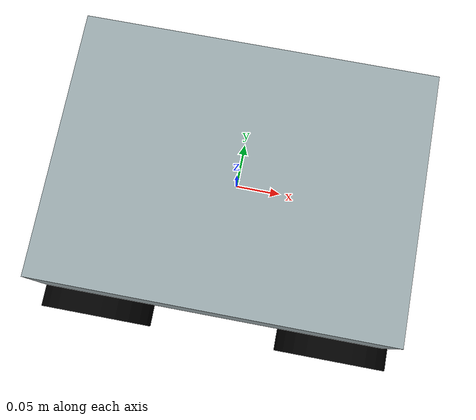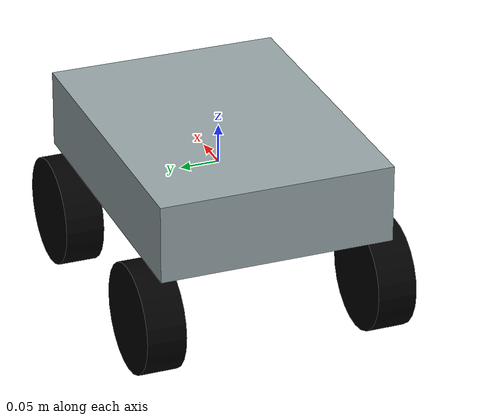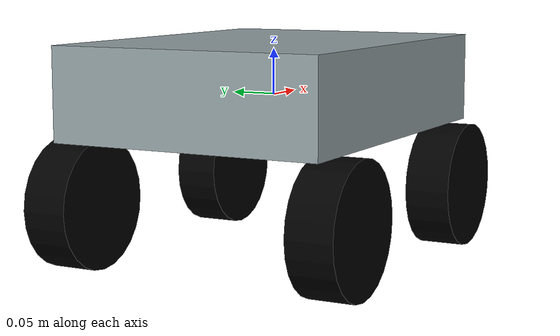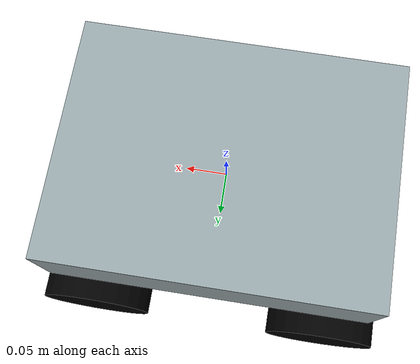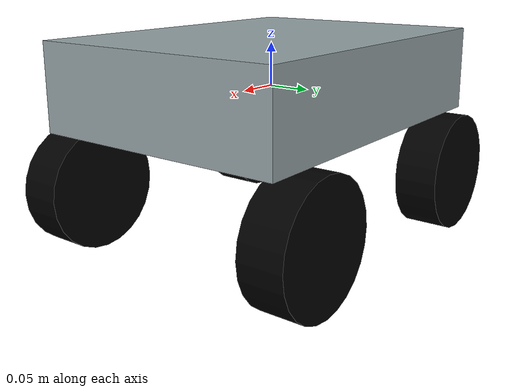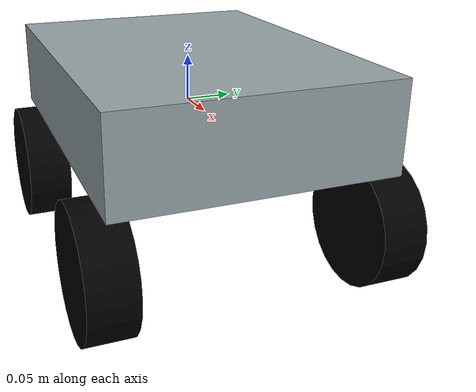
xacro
<!-- measurement in meter and kg -->

<!-- TODO -->
<robot name="" xmlns:xacro="http://www.ros.org/wiki/xacro">
    <material name="green">
        <color rgba="0 0.5 0.2 1"/>
    </material>
    <material name="black">
        <color rgba="0 0 0 1"/>
    </material>
    <material name="white">
        <color rgba="1 1 1 1"/>
    </material>
    <material name="grey">
        <color rgba="0.5843137254901961 0.6392156862745098 0.6509803921568628 1"/>
    </material>

<!-- TODO -->
    <xacro:property name="height" value="0.40" /> <!-- car body length from front wheel to back wheel edge  -->
    <xacro:property name="width" value="0.3" /> <!-- car body length from left wheel to right edge  -->
    <xacro:property name="depth" value="0.1" />
    <xacro:property name="mass_body" value="3.0" /> <!-- car kg -->

    <!-- must -->
    <link name="base_footprint"/>
    <joint name="base_joint" type="fixed">
        <parent link="base_footprint"/>
        <child link="base_link"/>
        <origin rpy="0 0 0" xyz="0 0 0.010"/>
    </joint>

    <!-- car body -->
    <link name="base_link">
        <visual>
            <geometry>
                <box size="${height} ${width} ${depth}"/>
            </geometry>
            <origin rpy="0 0 0" xyz="0 0 0"/>
            <material name="grey"/>
        </visual>
        <collision>
            <geometry>
                <box size="${height} ${width} ${depth}"/>
            </geometry>
            <origin rpy="0 0 0" xyz="0 0 0"/>
        </collision>
        <inertial>
            <mass value="${mass_body}"/>
            <!-- box inertia -->
            <inertia ixx="${1/12 * mass_body * (depth*depth + height*height)}" ixy="0.0" ixz="0.0" iyy="${1/12 * mass_body * (width*width + depth*depth)}" iyz="0.0" izz="${1/12 * mass_body * (width*width + height*height)}"/>
        </inertial>
    </link>

<!-- TODO -->
    <xacro:property name="mass_wheel" value="0.10" />
    <xacro:property name="wheelbase" value="0.30" />
    <xacro:property name="front_wheel_track" value="0.3" />
    <xacro:property name="back_wheel_track" value="0.3" />
    <xacro:property name="length" value="0.05" /> <!-- wheel width -->
    <xacro:property name="radius" value="0.07" /> <!-- wheel diameter/2 -->

    <!-- steering wheel -->
    <xacro:macro name="front_steering_wheel" params="prefix x_sign y_sign">
        <link name="${prefix}_front_steering_wheel">
            <inertial>
                <mass value="${mass_wheel}"/>
                <inertia ixx="${1/12 * mass_wheel * (3*radius*radius + length*length)}" ixy="0.0" ixz="0.0" iyy="${1/12 * mass_wheel * (3*radius*radius + length*length)}" iyz="0.0" izz="${1/2 * mass_wheel * radius*radius}"/>
            </inertial>
        </link>
        <joint name="${prefix}_front_steering_wheel_joint" type="revolute">
            <axis rpy="0 0 0" xyz="0 0 1"/>
            <parent link="base_link"/>
            <child link="${prefix}_front_steering_wheel"/>
            <origin rpy="0 0 0" xyz="${x_sign * wheelbase/2} ${y_sign * front_wheel_track/2} -${radius + depth/2}"/>
        </joint>
    </xacro:macro>

    <xacro:front_steering_wheel prefix="right" x_sign="1" y_sign="-1"/>
    <xacro:front_steering_wheel prefix="left" x_sign="1" y_sign="1"/>

    <!-- move forward wheel -->
    <xacro:macro name="forward_wheel" params="prefix parent x_sign y_sign adjust">
        <link name="${prefix}_forward_wheel">
            <visual>
                <origin rpy="${pi/2} 0 0" xyz="0 0 0"/>
                <geometry>
                    <cylinder length="${length}" radius="${radius}"/>
                </geometry>
                <material name="black"/>
            </visual>
            <collision>
                <origin rpy="${pi/2} 0 0" xyz="0 0 0"/>
                <geometry>
                    <cylinder length="${length}" radius="${radius}"/>
                </geometry>
            </collision>
            <inertial>
                <mass value="${mass_wheel}"/>
                <!-- cylinder inertia -->
                <inertia ixx="${1/12 * mass_wheel * (3*radius*radius + length*length)}" ixy="0.0" ixz="0.0" iyy="${1/12 * mass_wheel * (3*radius*radius + length*length)}" iyz="0.0" izz="${1/2 * mass_wheel * radius*radius}"/>
            </inertial>
        </link>
        <joint name="${prefix}_forward_wheel_joint" type="continuous">
            <axis rpy="0 0 0" xyz="0 1 0"/>
            <parent link="${parent}"/>
            <child link="${prefix}_forward_wheel"/>
            <origin rpy="0 0 0" xyz="${(x_sign * wheelbase/2) * adjust} ${(y_sign * back_wheel_track/2) * adjust} -${(radius + depth/2) * adjust}"/>
        </joint>
    </xacro:macro>

    <xacro:forward_wheel prefix="right_front" parent="right_front_steering_wheel" x_sign="1" y_sign="-1" adjust="0"/>
    <xacro:forward_wheel prefix="left_front" parent="left_front_steering_wheel" x_sign="1" y_sign="1" adjust="0"/>
    <xacro:forward_wheel prefix="right_back" parent="base_link" x_sign="-1" y_sign="-1" adjust="1"/>
    <xacro:forward_wheel prefix="left_back" parent="base_link" x_sign="-1" y_sign="1" adjust="1"/>

    <!-- scan sensor -->
    <link name="base_scan">
        <visual>
            <origin rpy="0 0 0" xyz="0 0 0"/>
            <geometry>
                <cylinder length="0.03" radius="0.02"/>
            </geometry>
            <material name="black"/>
        </visual>
        <collision>
            <origin rpy="0 0 0" xyz="0 0 0"/>
            <geometry>
                <cylinder length="0.03" radius="0.02"/>
            </geometry>
        </collision>
        <inertial>
            <mass value="0.2"/>
            <origin xyz="0 0 0"/>
        <inertia ixx="0.001" ixy="0.0" ixz="0.0" iyy="0.001" iyz="0.0" izz="0.001"/>
        </inertial>
    </link>
    <joint name="scan_joint" type="fixed">
        <parent link="base_link"/>
        <child link="base_scan"/>
        <origin rpy="0 0 0" xyz="0.1 0 0.03"/>
    </joint>

</robot>
